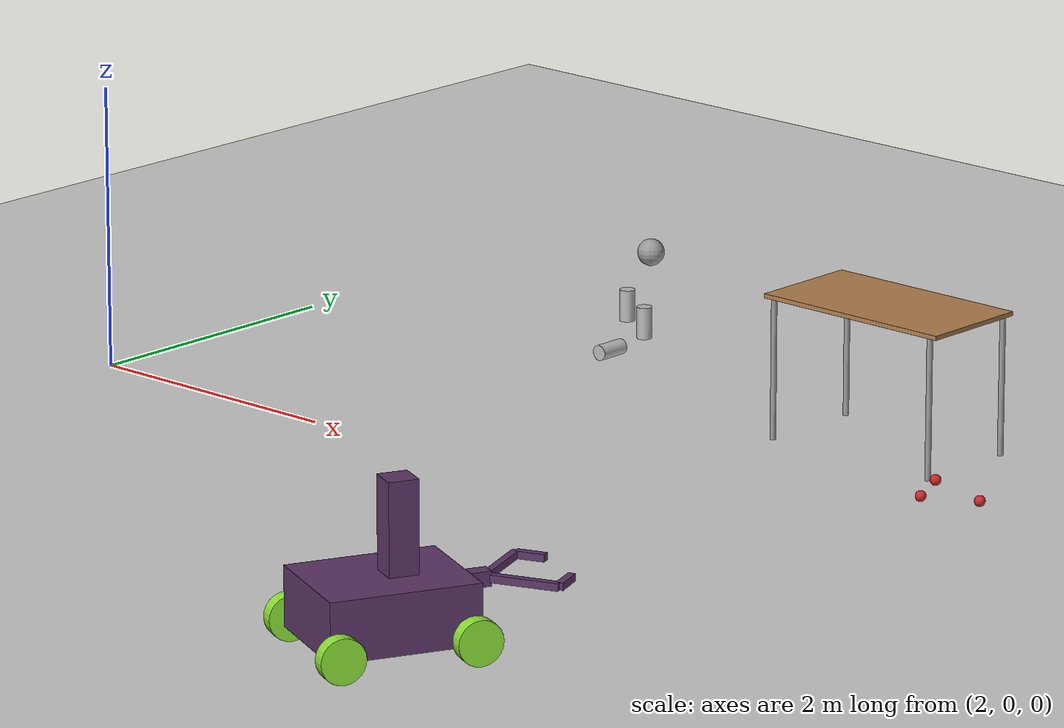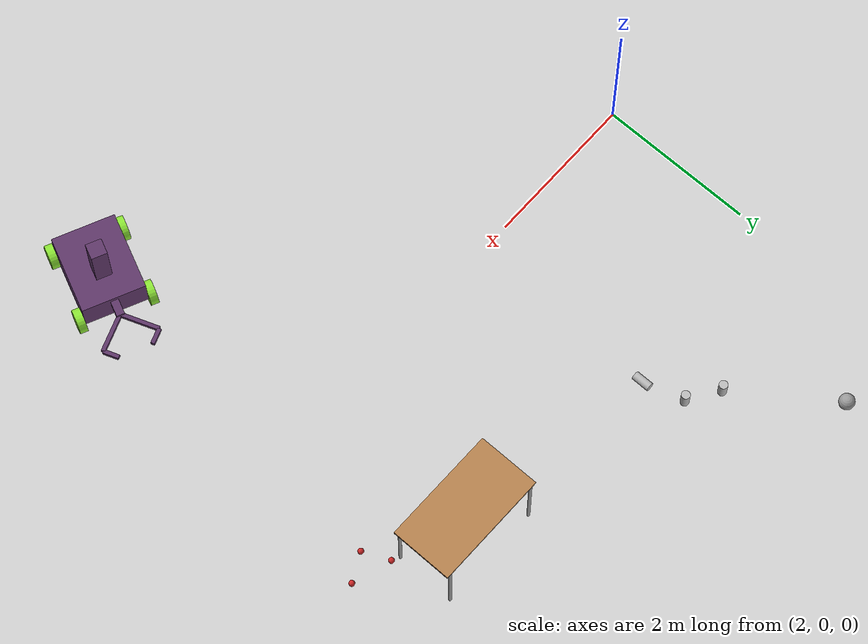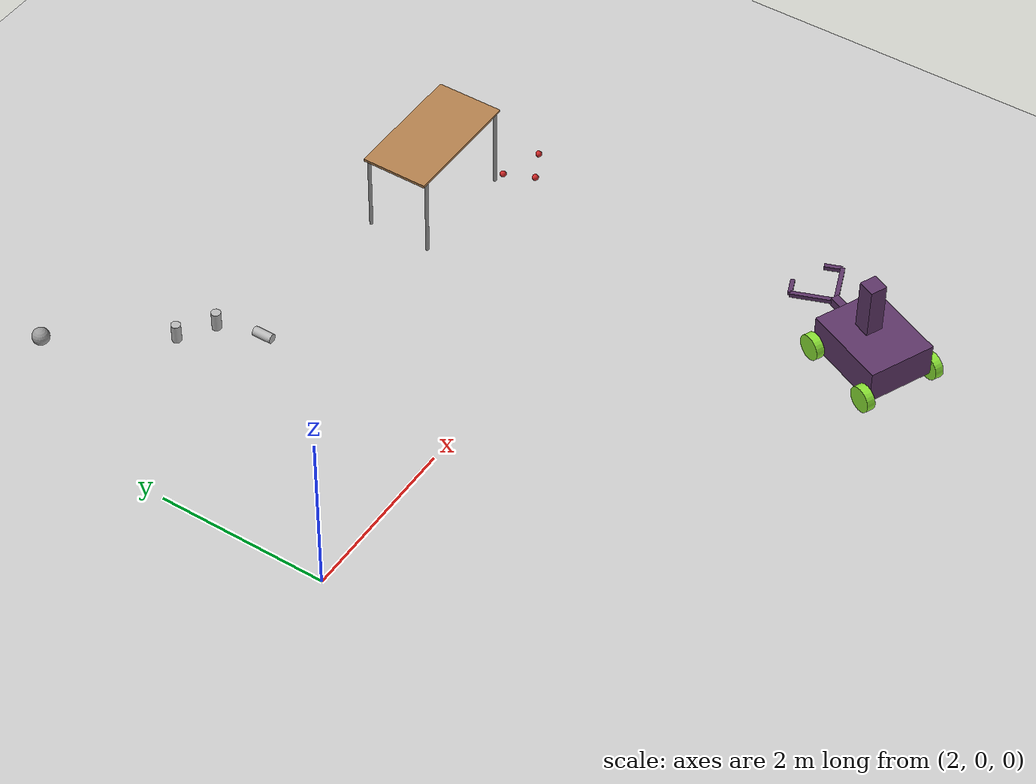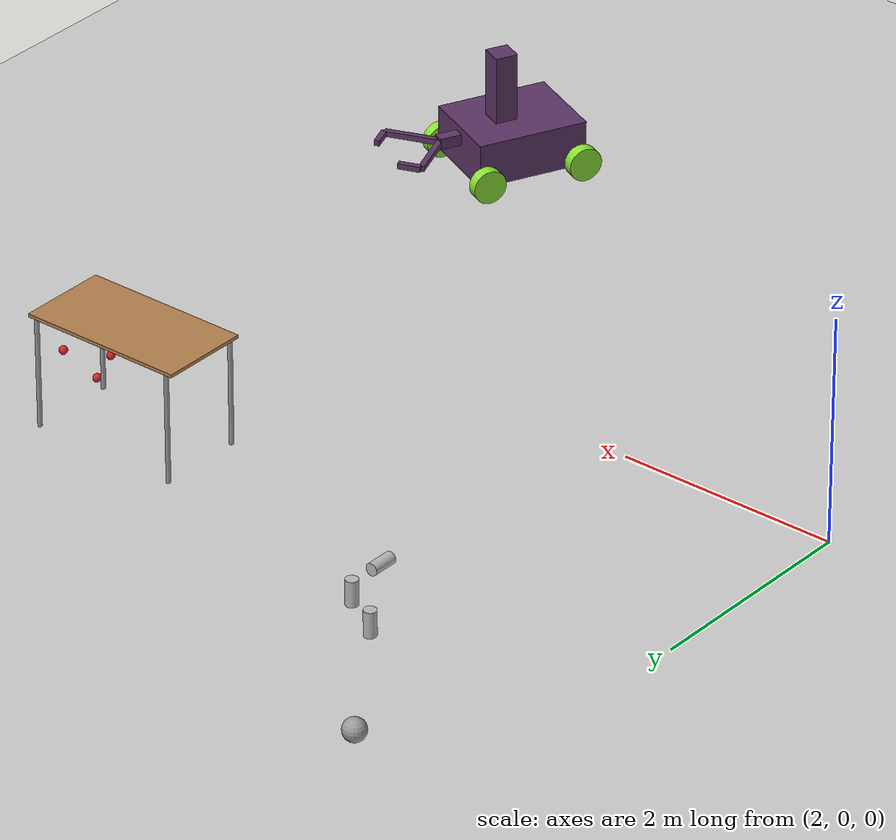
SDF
<sdf version="1.6">
 <world name="default">
  <model name="ground_plane">
   <static>1</static>
   <link name="ground_link">
    <collision name="collision">
     <geometry><plane><normal>0 0 1</normal><size>100 100</size></plane></geometry>
     <surface><friction><ode><mu>100</mu><mu2>50</mu2></ode></friction></surface>
    </collision>
    <visual name="visual">
     <cast_shadows>0</cast_shadows>
     <geometry><plane><normal>0 0 1</normal><size>100 100</size></plane></geometry>
     <material>
      <script><uri>file://media/materials/scripts/gazebo.material</uri><name>Gazebo/Grey</name></script>
     </material>
    </visual>
   </link>
  </model>
  <model name="table">
   <static>1</static>
   <link name="table_link">
    <collision name="table_collision">
     <pose>0 0 1 0 -0 0</pose>
     <geometry><box><size>1.5 0.8 0.03</size></box></geometry>
     <surface><friction><ode><mu>0.6</mu><mu2>0.6</mu2></ode></friction></surface>
    </collision>
    <visual name="table_visual1">
     <pose>0 0 1 0 -0 0</pose>
     <geometry><box><size>1.5 0.8 0.03</size></box></geometry>
     <material>
      <script><uri>file://media/materials/scripts/gazebo.material</uri><name>Gazebo/Wood</name></script>
     </material>
    </visual>
    <collision name="front_left_leg_collision">
     <pose>0.68 0.38 0.5 0 -0 0</pose>
     <geometry><cylinder><radius>0.02</radius><length>1</length></cylinder></geometry>
    </collision>
    <visual name="front_left_leg_visual">
     <pose>0.68 0.38 0.5 0 -0 0</pose>
     <geometry><cylinder><radius>0.02</radius><length>1</length></cylinder></geometry>
     <material>
      <script><uri>file://media/materials/scripts/gazebo.material</uri><name>Gazebo/Grey</name></script>
     </material>
    </visual>
    <collision name="front_right_leg_collision">
     <pose>0.68 -0.38 0.5 0 -0 0</pose>
     <geometry><cylinder><radius>0.02</radius><length>1</length></cylinder></geometry>
    </collision>
    <visual name="front_right_leg_visual">
     <pose>0.68 -0.38 0.5 0 -0 0</pose>
     <geometry><cylinder><radius>0.02</radius><length>1</length></cylinder></geometry>
     <material>
      <script><uri>file://media/materials/scripts/gazebo.material</uri><name>Gazebo/Grey</name></script>
     </material>
    </visual>
    <collision name="back_right_leg_collision">
     <pose>-0.68 -0.38 0.5 0 -0 0</pose>
     <geometry><cylinder><radius>0.02</radius><length>1</length></cylinder></geometry>
    </collision>
    <visual name="back_right_leg_visual">
     <pose>-0.68 -0.38 0.5 0 -0 0</pose>
     <geometry><cylinder><radius>0.02</radius><length>1</length></cylinder></geometry>
     <material>
      <script><uri>file://media/materials/scripts/gazebo.material</uri><name>Gazebo/Grey</name></script>
     </material>
    </visual>
    <collision name="back_left_leg_collision">
     <pose>-0.68 0.38 0.5 0 -0 0</pose>
     <geometry><cylinder><radius>0.02</radius><length>1</length></cylinder></geometry>
    </collision>
    <visual name="back_left_leg_visual">
     <pose>-0.68 0.38 0.5 0 -0 0</pose>
     <geometry><cylinder><radius>0.02</radius><length>1</length></cylinder></geometry>
     <material>
      <script><uri>file://media/materials/scripts/gazebo.material</uri><name>Gazebo/Grey</name></script>
     </material>
    </visual>
   </link>
   <pose>7.22859 2.20352 0 0 -0 0</pose>
  </model>
  <model name="my_ball">
   <link name="link_1">
    <inertial>
     <mass>1</mass>
     <inertia><ixx>0.1</ixx><ixy>0</ixy><ixz>0</ixz><iyy>0.1</iyy><iyz>0</iyz><izz>0.1</izz></inertia>
    </inertial>
    <visual name="visual">
     <geometry><sphere><radius>0.1</radius></sphere></geometry>
     <material>
      <lighting>1</lighting>
      <script><uri>file://media/materials/scripts/gazebo.material</uri><name>Gazebo/Grey</name></script>
      <ambient>1 1 1 1</ambient>
      <diffuse>1 1 1 1</diffuse>
      <specular>1 1 1 1</specular>
      <emissive>1 1 1 1</emissive>
      <shader type="vertex"><normal_map>__default__</normal_map></shader>
     </material>
    </visual>
    <collision name="collision">
     <geometry><sphere><radius>0.1</radius></sphere></geometry>
     <surface>
      <friction>
       <ode><mu>1</mu><mu2>1</mu2><fdir1>0 0 0</fdir1><slip1>0</slip1><slip2>0</slip2></ode>
       <torsional>
        <coefficient>1</coefficient>
        <patch_radius>0</patch_radius>
        <surface_radius>0</surface_radius>
        <use_patch_radius>1</use_patch_radius>
        <ode><slip>0</slip></ode>
       </torsional>
      </friction>
      <bounce><restitution_coefficient>0</restitution_coefficient><threshold>1e+06</threshold></bounce>
      <contact>
       <collide_without_contact>0</collide_without_contact>
       <collide_without_contact_bitmask>1</collide_without_contact_bitmask>
       <collide_bitmask>1</collide_bitmask>
       <ode>
        <soft_cfm>0</soft_cfm>
        <soft_erp>0.2</soft_erp>
        <kp>1e+13</kp>
        <kd>1</kd>
        <max_vel>0.01</max_vel>
        <min_depth>0</min_depth>
       </ode>
       <bullet>
        <split_impulse>1</split_impulse>
        <split_impulse_penetration_threshold>-0.01</split_impulse_penetration_threshold>
        <soft_cfm>0</soft_cfm>
        <soft_erp>0.2</soft_erp>
        <kp>1e+13</kp>
        <kd>1</kd>
       </bullet>
      </contact>
     </surface>
    </collision>
   </link>
   <static>0</static>
   <pose>3.05766 4.47276 0.1 0 -0 0</pose>
  </model>
  <model name="beer_0">
   <link name="link">
    <pose>0 0 0.115 0 -0 0</pose>
    <inertial>
     <mass>0.39</mass>
     <inertia><ixx>0.00058</ixx><ixy>0</ixy><ixz>0</ixz><iyy>0.00058</iyy><iyz>0</iyz><izz>0.00019</izz></inertia>
    </inertial>
    <collision name="collision">
     <geometry><cylinder><radius>0.055</radius><length>0.23</length></cylinder></geometry>
    </collision>
    <visual name="visual">
     <geometry><cylinder><radius>0.055</radius><length>0.23</length></cylinder></geometry>
     <material>
      <script>
       <uri>model://beer/materials/scripts</uri>
       <uri>model://beer/materials/textures</uri>
       <name>Beer/Diffuse</name>
      </script>
     </material>
    </visual>
   </link>
   <pose>3.89684 3.28553 -3e-06 0 0 -0.000118</pose>
  </model>
  <model name="beer_1">
   <link name="link">
    <pose>0 0 0.115 0 -0 0</pose>
    <inertial>
     <mass>0.39</mass>
     <inertia><ixx>0.00058</ixx><ixy>0</ixy><ixz>0</ixz><iyy>0.00058</iyy><iyz>0</iyz><izz>0.00019</izz></inertia>
    </inertial>
    <collision name="collision">
     <geometry><cylinder><radius>0.055</radius><length>0.23</length></cylinder></geometry>
    </collision>
    <visual name="visual">
     <geometry><cylinder><radius>0.055</radius><length>0.23</length></cylinder></geometry>
     <material>
      <script>
       <uri>model://beer/materials/scripts</uri>
       <uri>model://beer/materials/textures</uri>
       <name>Beer/Diffuse</name>
      </script>
     </material>
    </visual>
   </link>
   <pose>4.43119 2.40062 0.054918 -1.57033 -0.697069 -0.000297</pose>
  </model>
  <model name="cricket_ball_0">
   <link name="link">
    <pose>0 0 0.0375 0 -0 0</pose>
    <inertial>
     <mass>0.1467</mass>
     <inertia>
      <ixx>8.25187e-05</ixx>
      <ixy>0</ixy>
      <ixz>0</ixz>
      <iyy>8.25187e-05</iyy>
      <iyz>0</iyz>
      <izz>8.25187e-05</izz>
     </inertia>
    </inertial>
    <collision name="collision">
     <geometry><sphere><radius>0.0375</radius></sphere></geometry>
     <surface>
      <contact>
       <poissons_ratio>0.347</poissons_ratio>
       <elastic_modulus>8.8e+09</elastic_modulus>
       <ode><kp>100000</kp><kd>100</kd><max_vel>100</max_vel><min_depth>0.001</min_depth></ode>
      </contact>
      <friction>
       <torsional>
        <coefficient>1</coefficient>
        <use_patch_radius>0</use_patch_radius>
        <surface_radius>0.01</surface_radius>
       </torsional>
      </friction>
     </surface>
    </collision>
    <visual name="visual">
     <geometry><sphere><radius>0.0375</radius></sphere></geometry>
     <material>
      <script><uri>file://media/materials/scripts/gazebo.material</uri><name>Gazebo/Red</name></script>
     </material>
    </visual>
    <velocity_decay><linear>0</linear><angular>0.005</angular></velocity_decay>
   </link>
   <pose>8.01366 1.77992 -0.001014 0 -0 0</pose>
  </model>
  <model name="cricket_ball_1">
   <link name="link">
    <pose>0 0 0.0375 0 -0 0</pose>
    <inertial>
     <mass>0.1467</mass>
     <inertia>
      <ixx>8.25187e-05</ixx>
      <ixy>0</ixy>
      <ixz>0</ixz>
      <iyy>8.25187e-05</iyy>
      <iyz>0</iyz>
      <izz>8.25187e-05</izz>
     </inertia>
    </inertial>
    <collision name="collision">
     <geometry><sphere><radius>0.0375</radius></sphere></geometry>
     <surface>
      <contact>
       <poissons_ratio>0.347</poissons_ratio>
       <elastic_modulus>8.8e+09</elastic_modulus>
       <ode><kp>100000</kp><kd>100</kd><max_vel>100</max_vel><min_depth>0.001</min_depth></ode>
      </contact>
      <friction>
       <torsional>
        <coefficient>1</coefficient>
        <use_patch_radius>0</use_patch_radius>
        <surface_radius>0.01</surface_radius>
       </torsional>
      </friction>
     </surface>
    </collision>
    <visual name="visual">
     <geometry><sphere><radius>0.0375</radius></sphere></geometry>
     <material>
      <script><uri>file://media/materials/scripts/gazebo.material</uri><name>Gazebo/Red</name></script>
     </material>
    </visual>
    <velocity_decay><linear>0</linear><angular>0.005</angular></velocity_decay>
   </link>
   <pose>8.16558 1.44276 -0.001014 0 -0 0</pose>
  </model>
  <model name="cricket_ball_2">
   <link name="link">
    <pose>0 0 0.0375 0 -0 0</pose>
    <inertial>
     <mass>0.1467</mass>
     <inertia>
      <ixx>8.25187e-05</ixx>
      <ixy>0</ixy>
      <ixz>0</ixz>
      <iyy>8.25187e-05</iyy>
      <iyz>0</iyz>
      <izz>8.25187e-05</izz>
     </inertia>
    </inertial>
    <collision name="collision">
     <geometry><sphere><radius>0.0375</radius></sphere></geometry>
     <surface>
      <contact>
       <poissons_ratio>0.347</poissons_ratio>
       <elastic_modulus>8.8e+09</elastic_modulus>
       <ode><kp>100000</kp><kd>100</kd><max_vel>100</max_vel><min_depth>0.001</min_depth></ode>
      </contact>
      <friction>
       <torsional>
        <coefficient>1</coefficient>
        <use_patch_radius>0</use_patch_radius>
        <surface_radius>0.01</surface_radius>
       </torsional>
      </friction>
     </surface>
    </collision>
    <visual name="visual">
     <geometry><sphere><radius>0.0375</radius></sphere></geometry>
     <material>
      <script><uri>file://media/materials/scripts/gazebo.material</uri><name>Gazebo/Red</name></script>
     </material>
    </visual>
    <velocity_decay><linear>0</linear><angular>0.005</angular></velocity_decay>
   </link>
   <pose>8.51856 1.62475 -0.001014 0 -0 0</pose>
  </model>
  <model name="beer_2">
   <link name="link">
    <pose>0 0 0.115 0 -0 0</pose>
    <inertial>
     <mass>0.39</mass>
     <inertia><ixx>0.00058</ixx><ixy>0</ixy><ixz>0</ixz><iyy>0.00058</iyy><iyz>0</iyz><izz>0.00019</izz></inertia>
    </inertial>
    <collision name="collision">
     <geometry><cylinder><radius>0.055</radius><length>0.23</length></cylinder></geometry>
    </collision>
    <visual name="visual">
     <geometry><cylinder><radius>0.055</radius><length>0.23</length></cylinder></geometry>
     <material>
      <script>
       <uri>model://beer/materials/scripts</uri>
       <uri>model://beer/materials/textures</uri>
       <name>Beer/Diffuse</name>
      </script>
     </material>
    </visual>
   </link>
   <pose>4.28446 3.03807 -7e-06 0 0 -6.5e-05</pose>
  </model>
  <model name="GripperBot_3">
   <link name="link_1">
    <inertial>
     <mass>20</mass>
     <inertia>
      <ixx>0.885417</ixx>
      <ixy>0</ixy>
      <ixz>0</ixz>
      <iyy>0.885417</iyy>
      <iyz>0</iyz>
      <izz>1.66667</izz>
     </inertia>
    </inertial>
    <pose>0 -0 0.305 0 -0 0</pose>
    <visual name="visual">
     <geometry><box><size>1 0.8 0.4</size></box></geometry>
     <material>
      <lighting>1</lighting>
      <script><uri>file://media/materials/scripts/gazebo.material</uri><name>Gazebo/Grey</name></script>
      <shader type="pixel"><normal_map>__default__</normal_map></shader>
      <ambient>0.8 0 0 1</ambient>
      <diffuse>0.361 0.208 0.4 1</diffuse>
      <specular>0.961 0.475 0 1</specular>
      <emissive>0 0 0 1</emissive>
     </material>
    </visual>
    <collision name="collision">
     <geometry><box><size>1 0.8 0.4</size></box></geometry>
     <surface>
      <friction>
       <ode><mu>1</mu><mu2>1</mu2><fdir1>0 0 0</fdir1><slip1>0</slip1><slip2>0</slip2></ode>
       <torsional>
        <coefficient>1</coefficient>
        <patch_radius>0</patch_radius>
        <surface_radius>0</surface_radius>
        <use_patch_radius>1</use_patch_radius>
        <ode><slip>0</slip></ode>
       </torsional>
      </friction>
      <bounce><restitution_coefficient>0</restitution_coefficient><threshold>1e+06</threshold></bounce>
      <contact>
       <collide_without_contact>0</collide_without_contact>
       <collide_without_contact_bitmask>1</collide_without_contact_bitmask>
       <collide_bitmask>1</collide_bitmask>
       <ode>
        <soft_cfm>0</soft_cfm>
        <soft_erp>0.2</soft_erp>
        <kp>1e+13</kp>
        <kd>1</kd>
        <max_vel>0.01</max_vel>
        <min_depth>0</min_depth>
       </ode>
       <bullet>
        <split_impulse>1</split_impulse>
        <split_impulse_penetration_threshold>-0.01</split_impulse_penetration_threshold>
        <soft_cfm>0</soft_cfm>
        <soft_erp>0.2</soft_erp>
        <kp>1e+13</kp>
        <kd>1</kd>
       </bullet>
      </contact>
     </surface>
    </collision>
   </link>
   <link name="link_2_clone_1">
    <inertial>
     <mass>0.1</mass>
     <inertia><ixx>0.145833</ixx><ixy>0</ixy><ixz>0</ixz><iyy>0.145833</iyy><iyz>0</iyz><izz>0.125</izz></inertia>
    </inertial>
    <pose>0.45 -0.45 0.15 1.5707 -0 0</pose>
    <visual name="visual">
     <geometry><cylinder><radius>0.15</radius><length>0.1</length></cylinder></geometry>
     <material>
      <lighting>1</lighting>
      <script><uri>file://media/materials/scripts/gazebo.material</uri><name>Gazebo/Grey</name></script>
      <shader type="pixel"><normal_map>__default__</normal_map></shader>
      <ambient>0.541 0.886 0.204 1</ambient>
      <diffuse>0.7 0.7 0.7 1</diffuse>
      <specular>0.01 0.01 0.01 1</specular>
      <emissive>0 0 0 1</emissive>
     </material>
    </visual>
    <collision name="collision">
     <geometry><cylinder><radius>0.15</radius><length>0.1</length></cylinder></geometry>
     <surface>
      <friction>
       <ode><mu>1</mu><mu2>1</mu2><fdir1>0 0 0</fdir1><slip1>0</slip1><slip2>0</slip2></ode>
       <torsional>
        <coefficient>1</coefficient>
        <patch_radius>0</patch_radius>
        <surface_radius>0</surface_radius>
        <use_patch_radius>1</use_patch_radius>
        <ode><slip>0</slip></ode>
       </torsional>
      </friction>
      <bounce><restitution_coefficient>0</restitution_coefficient><threshold>1e+06</threshold></bounce>
      <contact>
       <collide_without_contact>0</collide_without_contact>
       <collide_without_contact_bitmask>1</collide_without_contact_bitmask>
       <collide_bitmask>1</collide_bitmask>
       <ode>
        <soft_cfm>0</soft_cfm>
        <soft_erp>0.2</soft_erp>
        <kp>1e+13</kp>
        <kd>1</kd>
        <max_vel>0.01</max_vel>
        <min_depth>0</min_depth>
       </ode>
       <bullet>
        <split_impulse>1</split_impulse>
        <split_impulse_penetration_threshold>-0.01</split_impulse_penetration_threshold>
        <soft_cfm>0</soft_cfm>
        <soft_erp>0.2</soft_erp>
        <kp>1e+13</kp>
        <kd>1</kd>
       </bullet>
      </contact>
     </surface>
    </collision>
   </link>
   <link name="link_2_clone_1_clone">
    <inertial>
     <mass>0.1</mass>
     <inertia><ixx>0.145833</ixx><ixy>0</ixy><ixz>0</ixz><iyy>0.145833</iyy><iyz>0</iyz><izz>0.125</izz></inertia>
    </inertial>
    <pose>0.45 0.45 0.15 1.5707 -0 0</pose>
    <visual name="visual">
     <geometry><cylinder><radius>0.15</radius><length>0.1</length></cylinder></geometry>
     <material>
      <lighting>1</lighting>
      <script><uri>file://media/materials/scripts/gazebo.material</uri><name>Gazebo/Grey</name></script>
      <shader type="pixel"><normal_map>__default__</normal_map></shader>
      <ambient>0.541 0.886 0.204 1</ambient>
      <diffuse>0.7 0.7 0.7 1</diffuse>
      <specular>0.01 0.01 0.01 1</specular>
      <emissive>0 0 0 1</emissive>
     </material>
    </visual>
    <collision name="collision">
     <geometry><cylinder><radius>0.15</radius><length>0.1</length></cylinder></geometry>
     <surface>
      <friction>
       <ode><mu>1</mu><mu2>1</mu2><fdir1>0 0 0</fdir1><slip1>0</slip1><slip2>0</slip2></ode>
       <torsional>
        <coefficient>1</coefficient>
        <patch_radius>0</patch_radius>
        <surface_radius>0</surface_radius>
        <use_patch_radius>1</use_patch_radius>
        <ode><slip>0</slip></ode>
       </torsional>
      </friction>
      <bounce><restitution_coefficient>0</restitution_coefficient><threshold>1e+06</threshold></bounce>
      <contact>
       <collide_without_contact>0</collide_without_contact>
       <collide_without_contact_bitmask>1</collide_without_contact_bitmask>
       <collide_bitmask>1</collide_bitmask>
       <ode>
        <soft_cfm>0</soft_cfm>
        <soft_erp>0.2</soft_erp>
        <kp>1e+13</kp>
        <kd>1</kd>
        <max_vel>0.01</max_vel>
        <min_depth>0</min_depth>
       </ode>
       <bullet>
        <split_impulse>1</split_impulse>
        <split_impulse_penetration_threshold>-0.01</split_impulse_penetration_threshold>
        <soft_cfm>0</soft_cfm>
        <soft_erp>0.2</soft_erp>
        <kp>1e+13</kp>
        <kd>1</kd>
       </bullet>
      </contact>
     </surface>
    </collision>
   </link>
   <link name="link_2_clone_1_clone_0">
    <inertial>
     <mass>0.1</mass>
     <inertia><ixx>0.145833</ixx><ixy>0</ixy><ixz>0</ixz><iyy>0.145833</iyy><iyz>0</iyz><izz>0.125</izz></inertia>
    </inertial>
    <pose>-0.45 -0.45 0.15 1.5707 -0 0</pose>
    <visual name="visual">
     <geometry><cylinder><radius>0.15</radius><length>0.1</length></cylinder></geometry>
     <material>
      <lighting>1</lighting>
      <script><uri>file://media/materials/scripts/gazebo.material</uri><name>Gazebo/Grey</name></script>
      <shader type="pixel"><normal_map>__default__</normal_map></shader>
      <ambient>0.541 0.886 0.204 1</ambient>
      <diffuse>0.7 0.7 0.7 1</diffuse>
      <specular>0.01 0.01 0.01 1</specular>
      <emissive>0 0 0 1</emissive>
     </material>
    </visual>
    <collision name="collision">
     <geometry><cylinder><radius>0.15</radius><length>0.1</length></cylinder></geometry>
     <surface>
      <friction>
       <ode><mu>1</mu><mu2>1</mu2><fdir1>0 0 0</fdir1><slip1>0</slip1><slip2>0</slip2></ode>
       <torsional>
        <coefficient>1</coefficient>
        <patch_radius>0</patch_radius>
        <surface_radius>0</surface_radius>
        <use_patch_radius>1</use_patch_radius>
        <ode><slip>0</slip></ode>
       </torsional>
      </friction>
      <bounce><restitution_coefficient>0</restitution_coefficient><threshold>1e+06</threshold></bounce>
      <contact>
       <collide_without_contact>0</collide_without_contact>
       <collide_without_contact_bitmask>1</collide_without_contact_bitmask>
       <collide_bitmask>1</collide_bitmask>
       <ode>
        <soft_cfm>0</soft_cfm>
        <soft_erp>0.2</soft_erp>
        <kp>1e+13</kp>
        <kd>1</kd>
        <max_vel>0.01</max_vel>
        <min_depth>0</min_depth>
       </ode>
       <bullet>
        <split_impulse>1</split_impulse>
        <split_impulse_penetration_threshold>-0.01</split_impulse_penetration_threshold>
        <soft_cfm>0</soft_cfm>
        <soft_erp>0.2</soft_erp>
        <kp>1e+13</kp>
        <kd>1</kd>
       </bullet>
      </contact>
     </surface>
    </collision>
   </link>
   <link name="link_2_clone_1_clone_clone">
    <inertial>
     <mass>0.1</mass>
     <inertia><ixx>0.145833</ixx><ixy>0</ixy><ixz>0</ixz><iyy>0.145833</iyy><iyz>0</iyz><izz>0.125</izz></inertia>
    </inertial>
    <pose>-0.45 0.45 0.15 1.5707 -0 0</pose>
    <visual name="visual">
     <geometry><cylinder><radius>0.15</radius><length>0.1</length></cylinder></geometry>
     <material>
      <lighting>1</lighting>
      <script><uri>file://media/materials/scripts/gazebo.material</uri><name>Gazebo/Grey</name></script>
      <shader type="pixel"><normal_map>__default__</normal_map></shader>
      <ambient>0.541 0.886 0.204 1</ambient>
      <diffuse>0.7 0.7 0.7 1</diffuse>
      <specular>0.01 0.01 0.01 1</specular>
      <emissive>0 0 0 1</emissive>
     </material>
    </visual>
    <collision name="collision">
     <geometry><cylinder><radius>0.15</radius><length>0.1</length></cylinder></geometry>
     <surface>
      <friction>
       <ode><mu>1</mu><mu2>1</mu2><fdir1>0 0 0</fdir1><slip1>0</slip1><slip2>0</slip2></ode>
       <torsional>
        <coefficient>1</coefficient>
        <patch_radius>0</patch_radius>
        <surface_radius>0</surface_radius>
        <use_patch_radius>1</use_patch_radius>
        <ode><slip>0</slip></ode>
       </torsional>
      </friction>
      <bounce><restitution_coefficient>0</restitution_coefficient><threshold>1e+06</threshold></bounce>
      <contact>
       <collide_without_contact>0</collide_without_contact>
       <collide_without_contact_bitmask>1</collide_without_contact_bitmask>
       <collide_bitmask>1</collide_bitmask>
       <ode>
        <soft_cfm>0</soft_cfm>
        <soft_erp>0.2</soft_erp>
        <kp>1e+13</kp>
        <kd>1</kd>
        <max_vel>0.01</max_vel>
        <min_depth>0</min_depth>
       </ode>
       <bullet>
        <split_impulse>1</split_impulse>
        <split_impulse_penetration_threshold>-0.01</split_impulse_penetration_threshold>
        <soft_cfm>0</soft_cfm>
        <soft_erp>0.2</soft_erp>
        <kp>1e+13</kp>
        <kd>1</kd>
       </bullet>
      </contact>
     </surface>
    </collision>
   </link>
   <link name="link_3">
    <inertial>
     <mass>0.1</mass>
     <inertia>
      <ixx>0.166667</ixx>
      <ixy>0</ixy>
      <ixz>0</ixz>
      <iyy>0.166667</iyy>
      <iyz>0</iyz>
      <izz>0.166667</izz>
     </inertia>
    </inertial>
    <pose>0.102445 -0.000668 0.620289 0 -0 0</pose>
    <visual name="visual">
     <geometry><box><size>0.2 0.2 1</size></box></geometry>
     <material>
      <lighting>1</lighting>
      <script><uri>file://media/materials/scripts/gazebo.material</uri><name>Gazebo/Grey</name></script>
      <shader type="pixel"><normal_map>__default__</normal_map></shader>
      <ambient>0.361 0.208 0.4 1</ambient>
      <diffuse>0.7 0.7 0.7 1</diffuse>
      <specular>0.01 0.01 0.01 1</specular>
      <emissive>0 0 0 1</emissive>
     </material>
    </visual>
    <collision name="collision">
     <geometry><box><size>0.2 0.2 1</size></box></geometry>
     <surface>
      <friction>
       <ode><mu>1</mu><mu2>1</mu2><fdir1>0 0 0</fdir1><slip1>0</slip1><slip2>0</slip2></ode>
       <torsional>
        <coefficient>1</coefficient>
        <patch_radius>0</patch_radius>
        <surface_radius>0</surface_radius>
        <use_patch_radius>1</use_patch_radius>
        <ode><slip>0</slip></ode>
       </torsional>
      </friction>
      <bounce><restitution_coefficient>0</restitution_coefficient><threshold>1e+06</threshold></bounce>
      <contact>
       <collide_without_contact>0</collide_without_contact>
       <collide_without_contact_bitmask>1</collide_without_contact_bitmask>
       <collide_bitmask>1</collide_bitmask>
       <ode>
        <soft_cfm>0</soft_cfm>
        <soft_erp>0.2</soft_erp>
        <kp>1e+13</kp>
        <kd>1</kd>
        <max_vel>0.01</max_vel>
        <min_depth>0</min_depth>
       </ode>
       <bullet>
        <split_impulse>1</split_impulse>
        <split_impulse_penetration_threshold>-0.01</split_impulse_penetration_threshold>
        <soft_cfm>0</soft_cfm>
        <soft_erp>0.2</soft_erp>
        <kp>1e+13</kp>
        <kd>1</kd>
       </bullet>
      </contact>
     </surface>
    </collision>
   </link>
   <link name="link_4">
    <inertial>
     <mass>0.1</mass>
     <inertia>
      <ixx>0.166667</ixx>
      <ixy>0</ixy>
      <ixz>0</ixz>
      <iyy>0.166667</iyy>
      <iyz>0</iyz>
      <izz>0.166667</izz>
     </inertia>
    </inertial>
    <pose>0.45 0 0.4 0 -0 0</pose>
    <visual name="visual">
     <geometry><box><size>0.5 0.1 0.1</size></box></geometry>
     <material>
      <lighting>1</lighting>
      <script><uri>file://media/materials/scripts/gazebo.material</uri><name>Gazebo/Grey</name></script>
      <shader type="pixel"><normal_map>__default__</normal_map></shader>
      <ambient>0.361 0.208 0.4 1</ambient>
      <diffuse>0.7 0.7 0.7 1</diffuse>
      <specular>0.01 0.01 0.01 1</specular>
      <emissive>0 0 0 1</emissive>
     </material>
    </visual>
    <collision name="collision">
     <geometry><box><size>0.5 0.1 0.1</size></box></geometry>
     <surface>
      <friction>
       <ode><mu>1</mu><mu2>1</mu2><fdir1>0 0 0</fdir1><slip1>0</slip1><slip2>0</slip2></ode>
       <torsional>
        <coefficient>1</coefficient>
        <patch_radius>0</patch_radius>
        <surface_radius>0</surface_radius>
        <use_patch_radius>1</use_patch_radius>
        <ode><slip>0</slip></ode>
       </torsional>
      </friction>
      <bounce><restitution_coefficient>0</restitution_coefficient><threshold>1e+06</threshold></bounce>
      <contact>
       <collide_without_contact>0</collide_without_contact>
       <collide_without_contact_bitmask>1</collide_without_contact_bitmask>
       <collide_bitmask>1</collide_bitmask>
       <ode>
        <soft_cfm>0</soft_cfm>
        <soft_erp>0.2</soft_erp>
        <kp>1e+13</kp>
        <kd>1</kd>
        <max_vel>0.01</max_vel>
        <min_depth>0</min_depth>
       </ode>
       <bullet>
        <split_impulse>1</split_impulse>
        <split_impulse_penetration_threshold>-0.01</split_impulse_penetration_threshold>
        <soft_cfm>0</soft_cfm>
        <soft_erp>0.2</soft_erp>
        <kp>1e+13</kp>
        <kd>1</kd>
       </bullet>
      </contact>
     </surface>
    </collision>
   </link>
   <link name="link_4_clone">
    <inertial>
     <mass>0.1</mass>
     <inertia>
      <ixx>0.166667</ixx>
      <ixy>0</ixy>
      <ixz>0</ixz>
      <iyy>0.166667</iyy>
      <iyz>0</iyz>
      <izz>0.166667</izz>
     </inertia>
    </inertial>
    <pose>0.85 -0.17677 0.4 0 0 -0.78539</pose>
    <visual name="visual">
     <geometry><box><size>0.5 0.05 0.05</size></box></geometry>
     <material>
      <lighting>1</lighting>
      <script><uri>file://media/materials/scripts/gazebo.material</uri><name>Gazebo/Grey</name></script>
      <shader type="pixel"><normal_map>__default__</normal_map></shader>
      <ambient>0.361 0.208 0.4 1</ambient>
      <diffuse>0.7 0.7 0.7 1</diffuse>
      <specular>0.01 0.01 0.01 1</specular>
      <emissive>0 0 0 1</emissive>
     </material>
    </visual>
    <collision name="collision">
     <geometry><box><size>0.5 0.05 0.05</size></box></geometry>
     <surface>
      <friction>
       <ode><mu>1</mu><mu2>1</mu2><fdir1>0 0 0</fdir1><slip1>0</slip1><slip2>0</slip2></ode>
       <torsional>
        <coefficient>1</coefficient>
        <patch_radius>0</patch_radius>
        <surface_radius>0</surface_radius>
        <use_patch_radius>1</use_patch_radius>
        <ode><slip>0</slip></ode>
       </torsional>
      </friction>
      <bounce><restitution_coefficient>0</restitution_coefficient><threshold>1e+06</threshold></bounce>
      <contact>
       <collide_without_contact>0</collide_without_contact>
       <collide_without_contact_bitmask>1</collide_without_contact_bitmask>
       <collide_bitmask>1</collide_bitmask>
       <ode>
        <soft_cfm>0</soft_cfm>
        <soft_erp>0.2</soft_erp>
        <kp>1e+13</kp>
        <kd>1</kd>
        <max_vel>0.01</max_vel>
        <min_depth>0</min_depth>
       </ode>
       <bullet>
        <split_impulse>1</split_impulse>
        <split_impulse_penetration_threshold>-0.01</split_impulse_penetration_threshold>
        <soft_cfm>0</soft_cfm>
        <soft_erp>0.2</soft_erp>
        <kp>1e+13</kp>
        <kd>1</kd>
       </bullet>
      </contact>
     </surface>
    </collision>
   </link>
   <link name="link_4_clone_clone">
    <inertial>
     <mass>0.1</mass>
     <inertia>
      <ixx>0.166667</ixx>
      <ixy>0</ixy>
      <ixz>0</ixz>
      <iyy>0.166667</iyy>
      <iyz>0</iyz>
      <izz>0.166667</izz>
     </inertia>
    </inertial>
    <pose>0.85 0.17677 0.4 0 -0 0.78539</pose>
    <visual name="visual">
     <geometry><box><size>0.5 0.05 0.05</size></box></geometry>
     <material>
      <lighting>1</lighting>
      <script><uri>file://media/materials/scripts/gazebo.material</uri><name>Gazebo/Grey</name></script>
      <shader type="pixel"><normal_map>__default__</normal_map></shader>
      <ambient>0.361 0.208 0.4 1</ambient>
      <diffuse>0.7 0.7 0.7 1</diffuse>
      <specular>0.01 0.01 0.01 1</specular>
      <emissive>0 0 0 1</emissive>
     </material>
    </visual>
    <collision name="collision">
     <geometry><box><size>0.5 0.05 0.05</size></box></geometry>
     <surface>
      <friction>
       <ode><mu>1</mu><mu2>1</mu2><fdir1>0 0 0</fdir1><slip1>0</slip1><slip2>0</slip2></ode>
       <torsional>
        <coefficient>1</coefficient>
        <patch_radius>0</patch_radius>
        <surface_radius>0</surface_radius>
        <use_patch_radius>1</use_patch_radius>
        <ode><slip>0</slip></ode>
       </torsional>
      </friction>
      <bounce><restitution_coefficient>0</restitution_coefficient><threshold>1e+06</threshold></bounce>
      <contact>
       <collide_without_contact>0</collide_without_contact>
       <collide_without_contact_bitmask>1</collide_without_contact_bitmask>
       <collide_bitmask>1</collide_bitmask>
       <ode>
        <soft_cfm>0</soft_cfm>
        <soft_erp>0.2</soft_erp>
        <kp>1e+13</kp>
        <kd>1</kd>
        <max_vel>0.01</max_vel>
        <min_depth>0</min_depth>
       </ode>
       <bullet>
        <split_impulse>1</split_impulse>
        <split_impulse_penetration_threshold>-0.01</split_impulse_penetration_threshold>
        <soft_cfm>0</soft_cfm>
        <soft_erp>0.2</soft_erp>
        <kp>1e+13</kp>
        <kd>1</kd>
       </bullet>
      </contact>
     </surface>
    </collision>
   </link>
   <link name="link_4_clone_clone_0">
    <inertial>
     <mass>0.1</mass>
     <inertia>
      <ixx>0.166667</ixx>
      <ixy>0</ixy>
      <ixz>0</ixz>
      <iyy>0.166667</iyy>
      <iyz>0</iyz>
      <izz>0.166667</izz>
     </inertia>
    </inertial>
    <pose>1.1 0.28 0.4 0 0 -0.78539</pose>
    <visual name="visual">
     <geometry><box><size>0.2 0.05 0.05</size></box></geometry>
     <material>
      <lighting>1</lighting>
      <script><uri>file://media/materials/scripts/gazebo.material</uri><name>Gazebo/Grey</name></script>
      <shader type="pixel"><normal_map>__default__</normal_map></shader>
      <ambient>0.361 0.208 0.4 1</ambient>
      <diffuse>0.7 0.7 0.7 1</diffuse>
      <specular>0.01 0.01 0.01 1</specular>
      <emissive>0 0 0 1</emissive>
     </material>
    </visual>
    <collision name="collision">
     <geometry><box><size>0.2 0.05 0.05</size></box></geometry>
     <surface>
      <friction>
       <ode><mu>1</mu><mu2>1</mu2><fdir1>0 0 0</fdir1><slip1>0</slip1><slip2>0</slip2></ode>
       <torsional>
        <coefficient>1</coefficient>
        <patch_radius>0</patch_radius>
        <surface_radius>0</surface_radius>
        <use_patch_radius>1</use_patch_radius>
        <ode><slip>0</slip></ode>
       </torsional>
      </friction>
      <bounce><restitution_coefficient>0</restitution_coefficient><threshold>1e+06</threshold></bounce>
      <contact>
       <collide_without_contact>0</collide_without_contact>
       <collide_without_contact_bitmask>1</collide_without_contact_bitmask>
       <collide_bitmask>1</collide_bitmask>
       <ode>
        <soft_cfm>0</soft_cfm>
        <soft_erp>0.2</soft_erp>
        <kp>1e+13</kp>
        <kd>1</kd>
        <max_vel>0.01</max_vel>
        <min_depth>0</min_depth>
       </ode>
       <bullet>
        <split_impulse>1</split_impulse>
        <split_impulse_penetration_threshold>-0.01</split_impulse_penetration_threshold>
        <soft_cfm>0</soft_cfm>
        <soft_erp>0.2</soft_erp>
        <kp>1e+13</kp>
        <kd>1</kd>
       </bullet>
      </contact>
     </surface>
    </collision>
   </link>
   <link name="link_4_clone_clone_clone">
    <inertial>
     <mass>0.1</mass>
     <inertia>
      <ixx>0.166667</ixx>
      <ixy>0</ixy>
      <ixz>0</ixz>
      <iyy>0.166667</iyy>
      <iyz>0</iyz>
      <izz>0.166667</izz>
     </inertia>
    </inertial>
    <pose>1.1 -0.28 0.4 0 -0 0.78539</pose>
    <visual name="visual">
     <geometry><box><size>0.2 0.05 0.05</size></box></geometry>
     <material>
      <lighting>1</lighting>
      <script><uri>file://media/materials/scripts/gazebo.material</uri><name>Gazebo/Grey</name></script>
      <shader type="pixel"><normal_map>__default__</normal_map></shader>
      <ambient>0.361 0.208 0.4 1</ambient>
      <diffuse>0.7 0.7 0.7 1</diffuse>
      <specular>0.01 0.01 0.01 1</specular>
      <emissive>0 0 0 1</emissive>
     </material>
    </visual>
    <collision name="collision">
     <geometry><box><size>0.2 0.05 0.05</size></box></geometry>
     <surface>
      <friction>
       <ode><mu>1</mu><mu2>1</mu2><fdir1>0 0 0</fdir1><slip1>0</slip1><slip2>0</slip2></ode>
       <torsional>
        <coefficient>1</coefficient>
        <patch_radius>0</patch_radius>
        <surface_radius>0</surface_radius>
        <use_patch_radius>1</use_patch_radius>
        <ode><slip>0</slip></ode>
       </torsional>
      </friction>
      <bounce><restitution_coefficient>0</restitution_coefficient><threshold>1e+06</threshold></bounce>
      <contact>
       <collide_without_contact>0</collide_without_contact>
       <collide_without_contact_bitmask>1</collide_without_contact_bitmask>
       <collide_bitmask>1</collide_bitmask>
       <ode>
        <soft_cfm>0</soft_cfm>
        <soft_erp>0.2</soft_erp>
        <kp>1e+13</kp>
        <kd>1</kd>
        <max_vel>0.01</max_vel>
        <min_depth>0</min_depth>
       </ode>
       <bullet>
        <split_impulse>1</split_impulse>
        <split_impulse_penetration_threshold>-0.01</split_impulse_penetration_threshold>
        <soft_cfm>0</soft_cfm>
        <soft_erp>0.2</soft_erp>
        <kp>1e+13</kp>
        <kd>1</kd>
       </bullet>
      </contact>
     </surface>
    </collision>
   </link>
   <joint name="link_1_JOINT_0" type="revolute">
    <parent>link_1</parent>
    <child>link_2_clone_1</child>
    <axis>
     <xyz>0 0 1</xyz>
     <limit><lower>-1.79769e+308</lower><upper>1.79769e+308</upper></limit>
     <dynamics>
      <spring_reference>0</spring_reference>
      <spring_stiffness>0</spring_stiffness>
      <damping>0</damping>
     </dynamics>
     <use_parent_model_frame>0</use_parent_model_frame>
    </axis>
    <physics>
     <ode><limit><cfm>0</cfm><erp>0.2</erp></limit><suspension><cfm>0</cfm><erp>0.2</erp></suspension></ode>
    </physics>
   </joint>
   <joint name="link_1_JOINT_1" type="revolute">
    <parent>link_1</parent>
    <child>link_2_clone_1_clone_0</child>
    <axis>
     <xyz>0 0 1</xyz>
     <limit><lower>-1.79769e+308</lower><upper>1.79769e+308</upper></limit>
     <dynamics>
      <spring_reference>0</spring_reference>
      <spring_stiffness>0</spring_stiffness>
      <damping>0</damping>
     </dynamics>
     <use_parent_model_frame>0</use_parent_model_frame>
    </axis>
    <physics>
     <ode><limit><cfm>0</cfm><erp>0.2</erp></limit><suspension><cfm>0</cfm><erp>0.2</erp></suspension></ode>
    </physics>
   </joint>
   <joint name="link_1_JOINT_2" type="revolute">
    <parent>link_1</parent>
    <child>link_2_clone_1_clone_clone</child>
    <axis>
     <xyz>0 0 -1</xyz>
     <limit><lower>-1.79769e+308</lower><upper>1.79769e+308</upper></limit>
     <dynamics>
      <spring_reference>0</spring_reference>
      <spring_stiffness>0</spring_stiffness>
      <damping>0</damping>
     </dynamics>
     <use_parent_model_frame>0</use_parent_model_frame>
    </axis>
    <physics>
     <ode><limit><cfm>0</cfm><erp>0.2</erp></limit><suspension><cfm>0</cfm><erp>0.2</erp></suspension></ode>
    </physics>
   </joint>
   <joint name="link_1_JOINT_3" type="revolute">
    <parent>link_1</parent>
    <child>link_2_clone_1_clone</child>
    <axis>
     <xyz>0 0 -1</xyz>
     <limit><lower>-1.79769e+308</lower><upper>1.79769e+308</upper></limit>
     <dynamics>
      <spring_reference>0</spring_reference>
      <spring_stiffness>0</spring_stiffness>
      <damping>0</damping>
     </dynamics>
     <use_parent_model_frame>0</use_parent_model_frame>
    </axis>
    <physics>
     <ode><limit><cfm>0</cfm><erp>0.2</erp></limit><suspension><cfm>0</cfm><erp>0.2</erp></suspension></ode>
    </physics>
   </joint>
   <joint name="link_1_JOINT_4" type="fixed">
    <parent>link_1</parent>
    <child>link_3</child>
    <physics>
     <ode><limit><cfm>0</cfm><erp>0.2</erp></limit><suspension><cfm>0</cfm><erp>0.2</erp></suspension></ode>
    </physics>
   </joint>
   <joint name="link_3_JOINT_5" type="prismatic">
    <parent>link_3</parent>
    <child>link_4</child>
    <axis>
     <xyz>0 0 1</xyz>
     <limit><lower>0</lower><upper>0.6</upper></limit>
     <dynamics>
      <spring_reference>0</spring_reference>
      <spring_stiffness>0</spring_stiffness>
      <damping>0</damping>
      <friction>0</friction>
     </dynamics>
     <use_parent_model_frame>0</use_parent_model_frame>
    </axis>
    <physics>
     <ode><limit><cfm>0</cfm><erp>0.2</erp></limit><suspension><cfm>0</cfm><erp>0.2</erp></suspension></ode>
    </physics>
   </joint>
   <joint name="link_4_JOINT_7" type="revolute">
    <parent>link_4</parent>
    <child>link_4_clone</child>
    <pose>-0.25 0 0 0 -0 0</pose>
    <axis>
     <xyz>0 0 1</xyz>
     <limit><lower>-0.45</lower><upper>0.45</upper></limit>
     <dynamics>
      <spring_reference>0</spring_reference>
      <spring_stiffness>0</spring_stiffness>
      <damping>0</damping>
     </dynamics>
     <use_parent_model_frame>0</use_parent_model_frame>
    </axis>
    <physics>
     <ode><limit><cfm>0</cfm><erp>0.2</erp></limit><suspension><cfm>0</cfm><erp>0.2</erp></suspension></ode>
    </physics>
   </joint>
   <joint name="link_4_JOINT_8" type="revolute">
    <parent>link_4</parent>
    <child>link_4_clone_clone</child>
    <pose>-0.25 0 0 0 -0 0</pose>
    <axis>
     <xyz>0 0 1</xyz>
     <limit><lower>-0.45</lower><upper>0.45</upper></limit>
     <dynamics>
      <spring_reference>0</spring_reference>
      <spring_stiffness>0</spring_stiffness>
      <damping>0</damping>
     </dynamics>
     <use_parent_model_frame>0</use_parent_model_frame>
    </axis>
    <physics>
     <ode><limit><cfm>0</cfm><erp>0.2</erp></limit><suspension><cfm>0</cfm><erp>0.2</erp></suspension></ode>
    </physics>
   </joint>
   <joint name="link_4_clone_JOINT_10" type="revolute">
    <parent>link_4_clone</parent>
    <child>link_4_clone_clone_clone</child>
    <pose>-0.1 0 0 0 -0 0</pose>
    <axis>
     <xyz>0 0 1</xyz>
     <limit><lower>-0.45</lower><upper>0.45</upper></limit>
     <dynamics>
      <spring_reference>0</spring_reference>
      <spring_stiffness>0</spring_stiffness>
      <damping>0</damping>
     </dynamics>
     <use_parent_model_frame>0</use_parent_model_frame>
    </axis>
    <physics>
     <ode><limit><cfm>0</cfm><erp>0.2</erp></limit><suspension><cfm>0</cfm><erp>0.2</erp></suspension></ode>
    </physics>
   </joint>
   <joint name="link_4_clone_clone_JOINT_9" type="revolute">
    <parent>link_4_clone_clone</parent>
    <child>link_4_clone_clone_0</child>
    <pose>-0.1 0 0 0 -0 0</pose>
    <axis>
     <xyz>0 0 1</xyz>
     <limit><lower>-0.45</lower><upper>0.45</upper></limit>
     <dynamics>
      <spring_reference>0</spring_reference>
      <spring_stiffness>0</spring_stiffness>
      <damping>0</damping>
     </dynamics>
     <use_parent_model_frame>0</use_parent_model_frame>
    </axis>
    <physics>
     <ode><limit><cfm>0</cfm><erp>0.2</erp></limit><suspension><cfm>0</cfm><erp>0.2</erp></suspension></ode>
    </physics>
   </joint>
   <static>0</static>
   <pose>7.68345 -3.1348 -1.5e-05 6e-06 3e-06 1.14115</pose>
  </model>
 </world>
</sdf>
